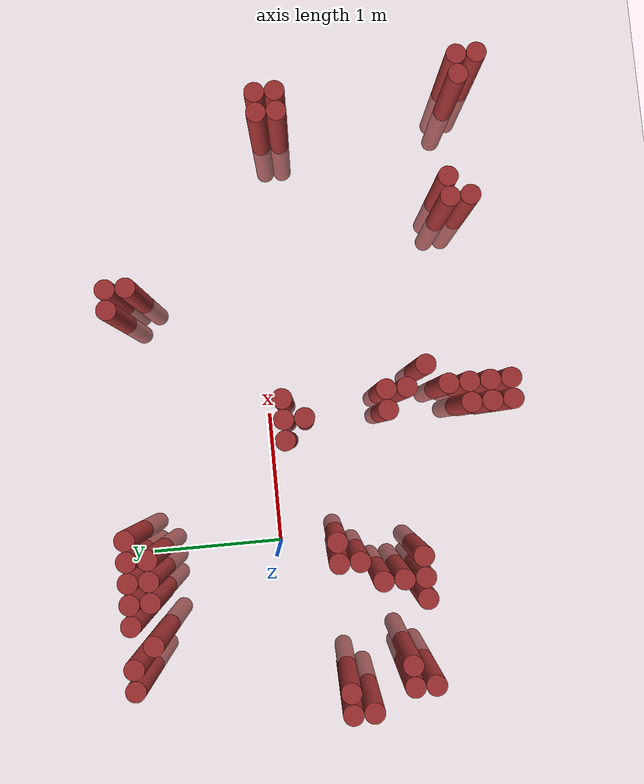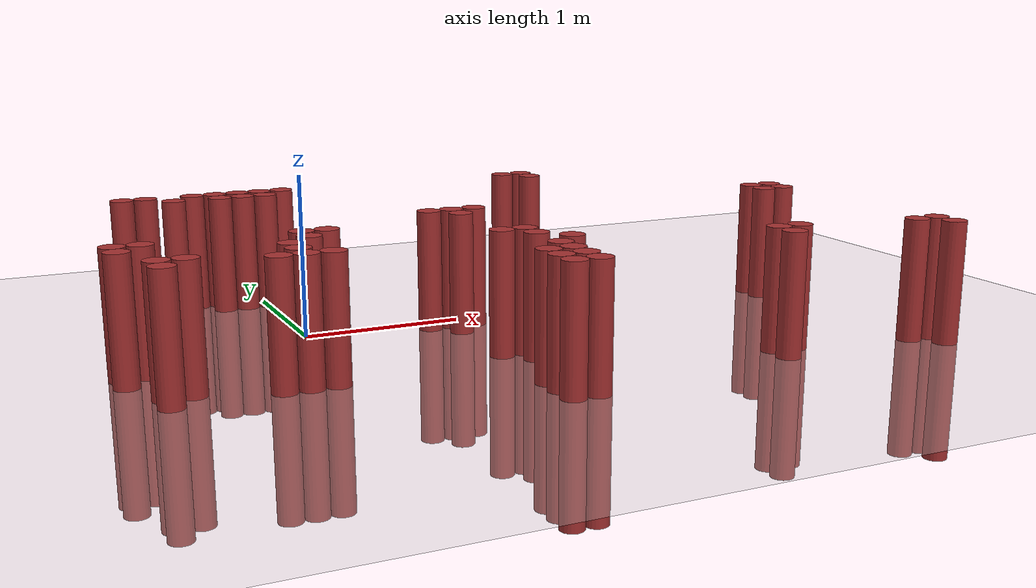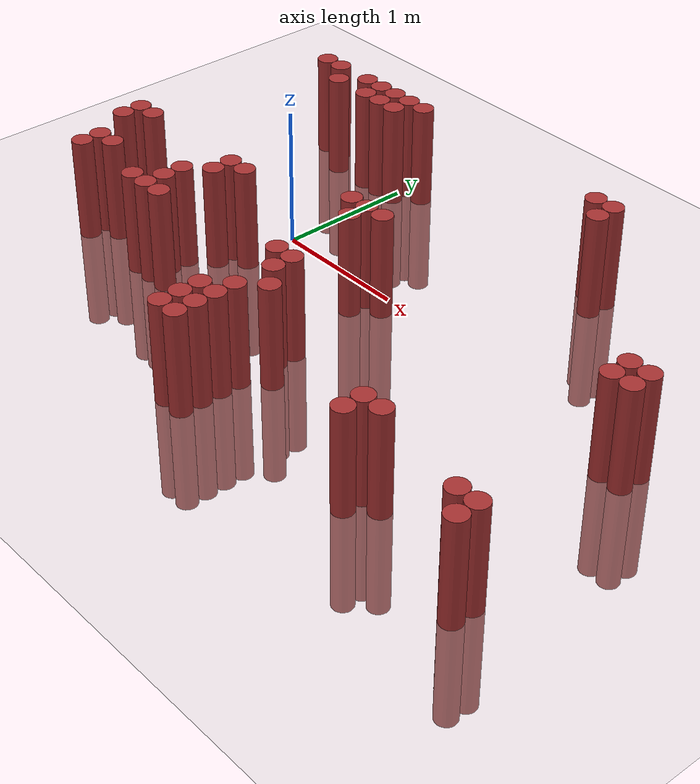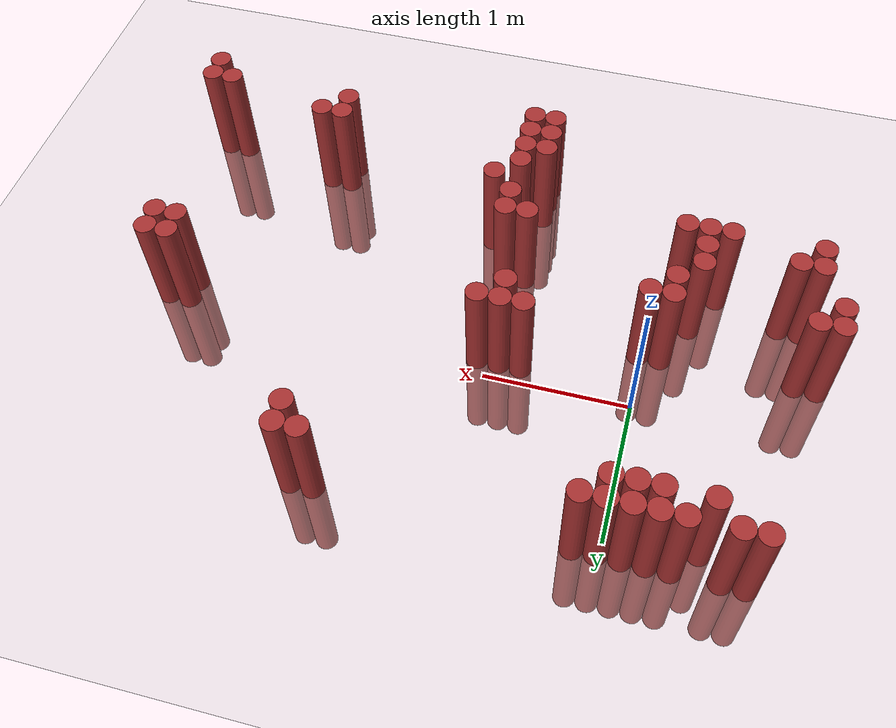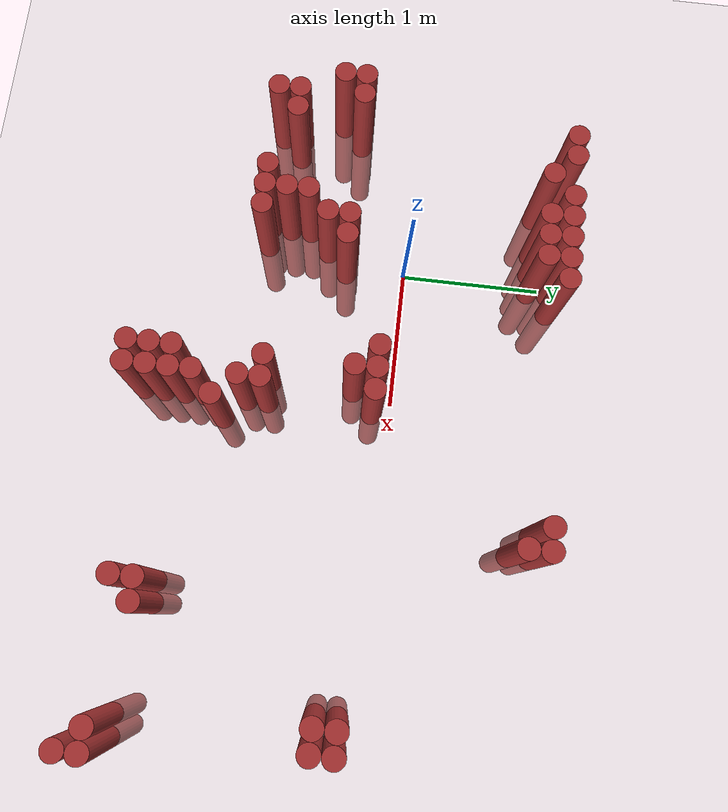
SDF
<sdf version="1.6">
 <world name="default">
  <model name="ground_plane">
   <static>1</static>
   <link name="link">
    <collision name="collision">
     <geometry><plane><normal>0 0 1</normal><size>100 100</size></plane></geometry>
     <surface><friction><ode><mu>100</mu><mu2>50</mu2></ode></friction></surface>
    </collision>
    <visual name="visual">
     <cast_shadows>0</cast_shadows>
     <geometry><plane><normal>0 0 1</normal><size>100 100</size></plane></geometry>
     <material>
      <script><uri>file://media/materials/scripts/gazebo.material</uri><name>Gazebo/Grey</name></script>
     </material>
    </visual>
   </link>
  </model>
  <model name="unit_cylinder_335">
   <static>1</static>
   <pose>-1.175000 -0.575000 0.000000 0.000000 0.000000 0.000000</pose>
   <link name="link">
    <inertial>
     <mass>1</mass>
     <inertia><ixx>0.145833</ixx><ixy>0</ixy><ixz>0</ixz><iyy>0.145833</iyy><iyz>0</iyz><izz>0.125</izz></inertia>
    </inertial>
    <collision name="collision">
     <geometry><cylinder><radius>0.075000</radius><length>1.5</length></cylinder></geometry>
    </collision>
    <visual name="visual">
     <geometry><cylinder><radius>0.075000</radius><length>1.5</length></cylinder></geometry>
     <material>
      <ambient>0.648000 0.192000 0.192000 1</ambient>
      <diffuse>0.648000 0.192000 0.192000 1</diffuse>
     </material>
     <material>
      <script><name>Gazebo/Grey</name><uri>file://media/materials/scripts/gazebo.material</uri></script>
     </material>
    </visual>
   </link>
  </model>
  <model name="unit_cylinder_336">
   <static>1</static>
   <pose>-1.175000 -0.425000 0.000000 0.000000 0.000000 0.000000</pose>
   <link name="link">
    <inertial>
     <mass>1</mass>
     <inertia><ixx>0.145833</ixx><ixy>0</ixy><ixz>0</ixz><iyy>0.145833</iyy><iyz>0</iyz><izz>0.125</izz></inertia>
    </inertial>
    <collision name="collision">
     <geometry><cylinder><radius>0.075000</radius><length>1.5</length></cylinder></geometry>
    </collision>
    <visual name="visual">
     <geometry><cylinder><radius>0.075000</radius><length>1.5</length></cylinder></geometry>
     <material>
      <ambient>0.648000 0.192000 0.192000 1</ambient>
      <diffuse>0.648000 0.192000 0.192000 1</diffuse>
     </material>
     <material>
      <script><name>Gazebo/Grey</name><uri>file://media/materials/scripts/gazebo.material</uri></script>
     </material>
    </visual>
   </link>
  </model>
  <model name="unit_cylinder_342">
   <static>1</static>
   <pose>-1.025000 -1.025000 0.000000 0.000000 0.000000 0.000000</pose>
   <link name="link">
    <inertial>
     <mass>1</mass>
     <inertia><ixx>0.145833</ixx><ixy>0</ixy><ixz>0</ixz><iyy>0.145833</iyy><iyz>0</iyz><izz>0.125</izz></inertia>
    </inertial>
    <collision name="collision">
     <geometry><cylinder><radius>0.075000</radius><length>1.5</length></cylinder></geometry>
    </collision>
    <visual name="visual">
     <geometry><cylinder><radius>0.075000</radius><length>1.5</length></cylinder></geometry>
     <material>
      <ambient>0.648000 0.192000 0.192000 1</ambient>
      <diffuse>0.648000 0.192000 0.192000 1</diffuse>
     </material>
     <material>
      <script><name>Gazebo/Grey</name><uri>file://media/materials/scripts/gazebo.material</uri></script>
     </material>
    </visual>
   </link>
  </model>
  <model name="unit_cylinder_343">
   <static>1</static>
   <pose>-1.025000 -0.875000 0.000000 0.000000 0.000000 0.000000</pose>
   <link name="link">
    <inertial>
     <mass>1</mass>
     <inertia><ixx>0.145833</ixx><ixy>0</ixy><ixz>0</ixz><iyy>0.145833</iyy><iyz>0</iyz><izz>0.125</izz></inertia>
    </inertial>
    <collision name="collision">
     <geometry><cylinder><radius>0.075000</radius><length>1.5</length></cylinder></geometry>
    </collision>
    <visual name="visual">
     <geometry><cylinder><radius>0.075000</radius><length>1.5</length></cylinder></geometry>
     <material>
      <ambient>0.648000 0.192000 0.192000 1</ambient>
      <diffuse>0.648000 0.192000 0.192000 1</diffuse>
     </material>
     <material>
      <script><name>Gazebo/Grey</name><uri>file://media/materials/scripts/gazebo.material</uri></script>
     </material>
    </visual>
   </link>
  </model>
  <model name="unit_cylinder_344">
   <static>1</static>
   <pose>-1.025000 -0.425000 0.000000 0.000000 0.000000 0.000000</pose>
   <link name="link">
    <inertial>
     <mass>1</mass>
     <inertia><ixx>0.145833</ixx><ixy>0</ixy><ixz>0</ixz><iyy>0.145833</iyy><iyz>0</iyz><izz>0.125</izz></inertia>
    </inertial>
    <collision name="collision">
     <geometry><cylinder><radius>0.075000</radius><length>1.5</length></cylinder></geometry>
    </collision>
    <visual name="visual">
     <geometry><cylinder><radius>0.075000</radius><length>1.5</length></cylinder></geometry>
     <material>
      <ambient>0.648000 0.192000 0.192000 1</ambient>
      <diffuse>0.648000 0.192000 0.192000 1</diffuse>
     </material>
     <material>
      <script><name>Gazebo/Grey</name><uri>file://media/materials/scripts/gazebo.material</uri></script>
     </material>
    </visual>
   </link>
  </model>
  <model name="unit_cylinder_348">
   <static>1</static>
   <pose>-0.875000 -0.875000 0.000000 0.000000 0.000000 0.000000</pose>
   <link name="link">
    <inertial>
     <mass>1</mass>
     <inertia><ixx>0.145833</ixx><ixy>0</ixy><ixz>0</ixz><iyy>0.145833</iyy><iyz>0</iyz><izz>0.125</izz></inertia>
    </inertial>
    <collision name="collision">
     <geometry><cylinder><radius>0.075000</radius><length>1.5</length></cylinder></geometry>
    </collision>
    <visual name="visual">
     <geometry><cylinder><radius>0.075000</radius><length>1.5</length></cylinder></geometry>
     <material>
      <ambient>0.648000 0.192000 0.192000 1</ambient>
      <diffuse>0.648000 0.192000 0.192000 1</diffuse>
     </material>
     <material>
      <script><name>Gazebo/Grey</name><uri>file://media/materials/scripts/gazebo.material</uri></script>
     </material>
    </visual>
   </link>
  </model>
  <model name="unit_cylinder_349">
   <static>1</static>
   <pose>-0.875000 1.075000 0.000000 0.000000 0.000000 0.000000</pose>
   <link name="link">
    <inertial>
     <mass>1</mass>
     <inertia><ixx>0.145833</ixx><ixy>0</ixy><ixz>0</ixz><iyy>0.145833</iyy><iyz>0</iyz><izz>0.125</izz></inertia>
    </inertial>
    <collision name="collision">
     <geometry><cylinder><radius>0.075000</radius><length>1.5</length></cylinder></geometry>
    </collision>
    <visual name="visual">
     <geometry><cylinder><radius>0.075000</radius><length>1.5</length></cylinder></geometry>
     <material>
      <ambient>0.648000 0.192000 0.192000 1</ambient>
      <diffuse>0.648000 0.192000 0.192000 1</diffuse>
     </material>
     <material>
      <script><name>Gazebo/Grey</name><uri>file://media/materials/scripts/gazebo.material</uri></script>
     </material>
    </visual>
   </link>
  </model>
  <model name="unit_cylinder_357">
   <static>1</static>
   <pose>-0.725000 1.075000 0.000000 0.000000 0.000000 0.000000</pose>
   <link name="link">
    <inertial>
     <mass>1</mass>
     <inertia><ixx>0.145833</ixx><ixy>0</ixy><ixz>0</ixz><iyy>0.145833</iyy><iyz>0</iyz><izz>0.125</izz></inertia>
    </inertial>
    <collision name="collision">
     <geometry><cylinder><radius>0.075000</radius><length>1.5</length></cylinder></geometry>
    </collision>
    <visual name="visual">
     <geometry><cylinder><radius>0.075000</radius><length>1.5</length></cylinder></geometry>
     <material>
      <ambient>0.648000 0.192000 0.192000 1</ambient>
      <diffuse>0.648000 0.192000 0.192000 1</diffuse>
     </material>
     <material>
      <script><name>Gazebo/Grey</name><uri>file://media/materials/scripts/gazebo.material</uri></script>
     </material>
    </visual>
   </link>
  </model>
  <model name="unit_cylinder_364">
   <static>1</static>
   <pose>-0.575000 0.925000 0.000000 0.000000 0.000000 0.000000</pose>
   <link name="link">
    <inertial>
     <mass>1</mass>
     <inertia><ixx>0.145833</ixx><ixy>0</ixy><ixz>0</ixz><iyy>0.145833</iyy><iyz>0</iyz><izz>0.125</izz></inertia>
    </inertial>
    <collision name="collision">
     <geometry><cylinder><radius>0.075000</radius><length>1.5</length></cylinder></geometry>
    </collision>
    <visual name="visual">
     <geometry><cylinder><radius>0.075000</radius><length>1.5</length></cylinder></geometry>
     <material>
      <ambient>0.648000 0.192000 0.192000 1</ambient>
      <diffuse>0.648000 0.192000 0.192000 1</diffuse>
     </material>
     <material>
      <script><name>Gazebo/Grey</name><uri>file://media/materials/scripts/gazebo.material</uri></script>
     </material>
    </visual>
   </link>
  </model>
  <model name="unit_cylinder_368">
   <static>1</static>
   <pose>-0.425000 -1.025000 0.000000 0.000000 0.000000 0.000000</pose>
   <link name="link">
    <inertial>
     <mass>1</mass>
     <inertia><ixx>0.145833</ixx><ixy>0</ixy><ixz>0</ixz><iyy>0.145833</iyy><iyz>0</iyz><izz>0.125</izz></inertia>
    </inertial>
    <collision name="collision">
     <geometry><cylinder><radius>0.075000</radius><length>1.5</length></cylinder></geometry>
    </collision>
    <visual name="visual">
     <geometry><cylinder><radius>0.075000</radius><length>1.5</length></cylinder></geometry>
     <material>
      <ambient>0.648000 0.192000 0.192000 1</ambient>
      <diffuse>0.648000 0.192000 0.192000 1</diffuse>
     </material>
     <material>
      <script><name>Gazebo/Grey</name><uri>file://media/materials/scripts/gazebo.material</uri></script>
     </material>
    </visual>
   </link>
  </model>
  <model name="unit_cylinder_369">
   <static>1</static>
   <pose>-0.425000 1.075000 0.000000 0.000000 0.000000 0.000000</pose>
   <link name="link">
    <inertial>
     <mass>1</mass>
     <inertia><ixx>0.145833</ixx><ixy>0</ixy><ixz>0</ixz><iyy>0.145833</iyy><iyz>0</iyz><izz>0.125</izz></inertia>
    </inertial>
    <collision name="collision">
     <geometry><cylinder><radius>0.075000</radius><length>1.5</length></cylinder></geometry>
    </collision>
    <visual name="visual">
     <geometry><cylinder><radius>0.075000</radius><length>1.5</length></cylinder></geometry>
     <material>
      <ambient>0.648000 0.192000 0.192000 1</ambient>
      <diffuse>0.648000 0.192000 0.192000 1</diffuse>
     </material>
     <material>
      <script><name>Gazebo/Grey</name><uri>file://media/materials/scripts/gazebo.material</uri></script>
     </material>
    </visual>
   </link>
  </model>
  <model name="unit_cylinder_370">
   <static>1</static>
   <pose>-0.275000 -1.025000 0.000000 0.000000 0.000000 0.000000</pose>
   <link name="link">
    <inertial>
     <mass>1</mass>
     <inertia><ixx>0.145833</ixx><ixy>0</ixy><ixz>0</ixz><iyy>0.145833</iyy><iyz>0</iyz><izz>0.125</izz></inertia>
    </inertial>
    <collision name="collision">
     <geometry><cylinder><radius>0.075000</radius><length>1.5</length></cylinder></geometry>
    </collision>
    <visual name="visual">
     <geometry><cylinder><radius>0.075000</radius><length>1.5</length></cylinder></geometry>
     <material>
      <ambient>0.648000 0.192000 0.192000 1</ambient>
      <diffuse>0.648000 0.192000 0.192000 1</diffuse>
     </material>
     <material>
      <script><name>Gazebo/Grey</name><uri>file://media/materials/scripts/gazebo.material</uri></script>
     </material>
    </visual>
   </link>
  </model>
  <model name="unit_cylinder_371">
   <static>1</static>
   <pose>-0.275000 -0.875000 0.000000 0.000000 0.000000 0.000000</pose>
   <link name="link">
    <inertial>
     <mass>1</mass>
     <inertia><ixx>0.145833</ixx><ixy>0</ixy><ixz>0</ixz><iyy>0.145833</iyy><iyz>0</iyz><izz>0.125</izz></inertia>
    </inertial>
    <collision name="collision">
     <geometry><cylinder><radius>0.075000</radius><length>1.5</length></cylinder></geometry>
    </collision>
    <visual name="visual">
     <geometry><cylinder><radius>0.075000</radius><length>1.5</length></cylinder></geometry>
     <material>
      <ambient>0.648000 0.192000 0.192000 1</ambient>
      <diffuse>0.648000 0.192000 0.192000 1</diffuse>
     </material>
     <material>
      <script><name>Gazebo/Grey</name><uri>file://media/materials/scripts/gazebo.material</uri></script>
     </material>
    </visual>
   </link>
  </model>
  <model name="unit_cylinder_372">
   <static>1</static>
   <pose>-0.275000 -0.725000 0.000000 0.000000 0.000000 0.000000</pose>
   <link name="link">
    <inertial>
     <mass>1</mass>
     <inertia><ixx>0.145833</ixx><ixy>0</ixy><ixz>0</ixz><iyy>0.145833</iyy><iyz>0</iyz><izz>0.125</izz></inertia>
    </inertial>
    <collision name="collision">
     <geometry><cylinder><radius>0.075000</radius><length>1.5</length></cylinder></geometry>
    </collision>
    <visual name="visual">
     <geometry><cylinder><radius>0.075000</radius><length>1.5</length></cylinder></geometry>
     <material>
      <ambient>0.648000 0.192000 0.192000 1</ambient>
      <diffuse>0.648000 0.192000 0.192000 1</diffuse>
     </material>
     <material>
      <script><name>Gazebo/Grey</name><uri>file://media/materials/scripts/gazebo.material</uri></script>
     </material>
    </visual>
   </link>
  </model>
  <model name="unit_cylinder_373">
   <static>1</static>
   <pose>-0.275000 0.925000 0.000000 0.000000 0.000000 0.000000</pose>
   <link name="link">
    <inertial>
     <mass>1</mass>
     <inertia><ixx>0.145833</ixx><ixy>0</ixy><ixz>0</ixz><iyy>0.145833</iyy><iyz>0</iyz><izz>0.125</izz></inertia>
    </inertial>
    <collision name="collision">
     <geometry><cylinder><radius>0.075000</radius><length>1.5</length></cylinder></geometry>
    </collision>
    <visual name="visual">
     <geometry><cylinder><radius>0.075000</radius><length>1.5</length></cylinder></geometry>
     <material>
      <ambient>0.648000 0.192000 0.192000 1</ambient>
      <diffuse>0.648000 0.192000 0.192000 1</diffuse>
     </material>
     <material>
      <script><name>Gazebo/Grey</name><uri>file://media/materials/scripts/gazebo.material</uri></script>
     </material>
    </visual>
   </link>
  </model>
  <model name="unit_cylinder_374">
   <static>1</static>
   <pose>-0.275000 1.075000 0.000000 0.000000 0.000000 0.000000</pose>
   <link name="link">
    <inertial>
     <mass>1</mass>
     <inertia><ixx>0.145833</ixx><ixy>0</ixy><ixz>0</ixz><iyy>0.145833</iyy><iyz>0</iyz><izz>0.125</izz></inertia>
    </inertial>
    <collision name="collision">
     <geometry><cylinder><radius>0.075000</radius><length>1.5</length></cylinder></geometry>
    </collision>
    <visual name="visual">
     <geometry><cylinder><radius>0.075000</radius><length>1.5</length></cylinder></geometry>
     <material>
      <ambient>0.648000 0.192000 0.192000 1</ambient>
      <diffuse>0.648000 0.192000 0.192000 1</diffuse>
     </material>
     <material>
      <script><name>Gazebo/Grey</name><uri>file://media/materials/scripts/gazebo.material</uri></script>
     </material>
    </visual>
   </link>
  </model>
  <model name="unit_cylinder_376">
   <static>1</static>
   <pose>-0.125000 -1.025000 0.000000 0.000000 0.000000 0.000000</pose>
   <link name="link">
    <inertial>
     <mass>1</mass>
     <inertia><ixx>0.145833</ixx><ixy>0</ixy><ixz>0</ixz><iyy>0.145833</iyy><iyz>0</iyz><izz>0.125</izz></inertia>
    </inertial>
    <collision name="collision">
     <geometry><cylinder><radius>0.075000</radius><length>1.5</length></cylinder></geometry>
    </collision>
    <visual name="visual">
     <geometry><cylinder><radius>0.075000</radius><length>1.5</length></cylinder></geometry>
     <material>
      <ambient>0.648000 0.192000 0.192000 1</ambient>
      <diffuse>0.648000 0.192000 0.192000 1</diffuse>
     </material>
     <material>
      <script><name>Gazebo/Grey</name><uri>file://media/materials/scripts/gazebo.material</uri></script>
     </material>
    </visual>
   </link>
  </model>
  <model name="unit_cylinder_377">
   <static>1</static>
   <pose>-0.125000 -0.575000 0.000000 0.000000 0.000000 0.000000</pose>
   <link name="link">
    <inertial>
     <mass>1</mass>
     <inertia><ixx>0.145833</ixx><ixy>0</ixy><ixz>0</ixz><iyy>0.145833</iyy><iyz>0</iyz><izz>0.125</izz></inertia>
    </inertial>
    <collision name="collision">
     <geometry><cylinder><radius>0.075000</radius><length>1.5</length></cylinder></geometry>
    </collision>
    <visual name="visual">
     <geometry><cylinder><radius>0.075000</radius><length>1.5</length></cylinder></geometry>
     <material>
      <ambient>0.648000 0.192000 0.192000 1</ambient>
      <diffuse>0.648000 0.192000 0.192000 1</diffuse>
     </material>
     <material>
      <script><name>Gazebo/Grey</name><uri>file://media/materials/scripts/gazebo.material</uri></script>
     </material>
    </visual>
   </link>
  </model>
  <model name="unit_cylinder_378">
   <static>1</static>
   <pose>-0.125000 -0.425000 0.000000 0.000000 0.000000 0.000000</pose>
   <link name="link">
    <inertial>
     <mass>1</mass>
     <inertia><ixx>0.145833</ixx><ixy>0</ixy><ixz>0</ixz><iyy>0.145833</iyy><iyz>0</iyz><izz>0.125</izz></inertia>
    </inertial>
    <collision name="collision">
     <geometry><cylinder><radius>0.075000</radius><length>1.5</length></cylinder></geometry>
    </collision>
    <visual name="visual">
     <geometry><cylinder><radius>0.075000</radius><length>1.5</length></cylinder></geometry>
     <material>
      <ambient>0.648000 0.192000 0.192000 1</ambient>
      <diffuse>0.648000 0.192000 0.192000 1</diffuse>
     </material>
     <material>
      <script><name>Gazebo/Grey</name><uri>file://media/materials/scripts/gazebo.material</uri></script>
     </material>
    </visual>
   </link>
  </model>
  <model name="unit_cylinder_379">
   <static>1</static>
   <pose>-0.125000 0.925000 0.000000 0.000000 0.000000 0.000000</pose>
   <link name="link">
    <inertial>
     <mass>1</mass>
     <inertia><ixx>0.145833</ixx><ixy>0</ixy><ixz>0</ixz><iyy>0.145833</iyy><iyz>0</iyz><izz>0.125</izz></inertia>
    </inertial>
    <collision name="collision">
     <geometry><cylinder><radius>0.075000</radius><length>1.5</length></cylinder></geometry>
    </collision>
    <visual name="visual">
     <geometry><cylinder><radius>0.075000</radius><length>1.5</length></cylinder></geometry>
     <material>
      <ambient>0.648000 0.192000 0.192000 1</ambient>
      <diffuse>0.648000 0.192000 0.192000 1</diffuse>
     </material>
     <material>
      <script><name>Gazebo/Grey</name><uri>file://media/materials/scripts/gazebo.material</uri></script>
     </material>
    </visual>
   </link>
  </model>
  <model name="unit_cylinder_380">
   <static>1</static>
   <pose>-0.125000 1.075000 0.000000 0.000000 0.000000 0.000000</pose>
   <link name="link">
    <inertial>
     <mass>1</mass>
     <inertia><ixx>0.145833</ixx><ixy>0</ixy><ixz>0</ixz><iyy>0.145833</iyy><iyz>0</iyz><izz>0.125</izz></inertia>
    </inertial>
    <collision name="collision">
     <geometry><cylinder><radius>0.075000</radius><length>1.5</length></cylinder></geometry>
    </collision>
    <visual name="visual">
     <geometry><cylinder><radius>0.075000</radius><length>1.5</length></cylinder></geometry>
     <material>
      <ambient>0.648000 0.192000 0.192000 1</ambient>
      <diffuse>0.648000 0.192000 0.192000 1</diffuse>
     </material>
     <material>
      <script><name>Gazebo/Grey</name><uri>file://media/materials/scripts/gazebo.material</uri></script>
     </material>
    </visual>
   </link>
  </model>
  <model name="unit_cylinder_386">
   <static>1</static>
   <pose>0.025000 -0.425000 0.000000 0.000000 0.000000 0.000000</pose>
   <link name="link">
    <inertial>
     <mass>1</mass>
     <inertia><ixx>0.145833</ixx><ixy>0</ixy><ixz>0</ixz><iyy>0.145833</iyy><iyz>0</iyz><izz>0.125</izz></inertia>
    </inertial>
    <collision name="collision">
     <geometry><cylinder><radius>0.075000</radius><length>1.5</length></cylinder></geometry>
    </collision>
    <visual name="visual">
     <geometry><cylinder><radius>0.075000</radius><length>1.5</length></cylinder></geometry>
     <material>
      <ambient>0.648000 0.192000 0.192000 1</ambient>
      <diffuse>0.648000 0.192000 0.192000 1</diffuse>
     </material>
     <material>
      <script><name>Gazebo/Grey</name><uri>file://media/materials/scripts/gazebo.material</uri></script>
     </material>
    </visual>
   </link>
  </model>
  <model name="unit_cylinder_387">
   <static>1</static>
   <pose>0.025000 0.925000 0.000000 0.000000 0.000000 0.000000</pose>
   <link name="link">
    <inertial>
     <mass>1</mass>
     <inertia><ixx>0.145833</ixx><ixy>0</ixy><ixz>0</ixz><iyy>0.145833</iyy><iyz>0</iyz><izz>0.125</izz></inertia>
    </inertial>
    <collision name="collision">
     <geometry><cylinder><radius>0.075000</radius><length>1.5</length></cylinder></geometry>
    </collision>
    <visual name="visual">
     <geometry><cylinder><radius>0.075000</radius><length>1.5</length></cylinder></geometry>
     <material>
      <ambient>0.648000 0.192000 0.192000 1</ambient>
      <diffuse>0.648000 0.192000 0.192000 1</diffuse>
     </material>
     <material>
      <script><name>Gazebo/Grey</name><uri>file://media/materials/scripts/gazebo.material</uri></script>
     </material>
    </visual>
   </link>
  </model>
  <model name="unit_cylinder_388">
   <static>1</static>
   <pose>0.025000 1.075000 0.000000 0.000000 0.000000 0.000000</pose>
   <link name="link">
    <inertial>
     <mass>1</mass>
     <inertia><ixx>0.145833</ixx><ixy>0</ixy><ixz>0</ixz><iyy>0.145833</iyy><iyz>0</iyz><izz>0.125</izz></inertia>
    </inertial>
    <collision name="collision">
     <geometry><cylinder><radius>0.075000</radius><length>1.5</length></cylinder></geometry>
    </collision>
    <visual name="visual">
     <geometry><cylinder><radius>0.075000</radius><length>1.5</length></cylinder></geometry>
     <material>
      <ambient>0.648000 0.192000 0.192000 1</ambient>
      <diffuse>0.648000 0.192000 0.192000 1</diffuse>
     </material>
     <material>
      <script><name>Gazebo/Grey</name><uri>file://media/materials/scripts/gazebo.material</uri></script>
     </material>
    </visual>
   </link>
  </model>
  <model name="unit_cylinder_392">
   <static>1</static>
   <pose>0.175000 1.075000 0.000000 0.000000 0.000000 0.000000</pose>
   <link name="link">
    <inertial>
     <mass>1</mass>
     <inertia><ixx>0.145833</ixx><ixy>0</ixy><ixz>0</ixz><iyy>0.145833</iyy><iyz>0</iyz><izz>0.125</izz></inertia>
    </inertial>
    <collision name="collision">
     <geometry><cylinder><radius>0.075000</radius><length>1.5</length></cylinder></geometry>
    </collision>
    <visual name="visual">
     <geometry><cylinder><radius>0.075000</radius><length>1.5</length></cylinder></geometry>
     <material>
      <ambient>0.648000 0.192000 0.192000 1</ambient>
      <diffuse>0.648000 0.192000 0.192000 1</diffuse>
     </material>
     <material>
      <script><name>Gazebo/Grey</name><uri>file://media/materials/scripts/gazebo.material</uri></script>
     </material>
    </visual>
   </link>
  </model>
  <model name="unit_cylinder_404">
   <static>1</static>
   <pose>0.775000 -0.125000 0.000000 0.000000 0.000000 0.000000</pose>
   <link name="link">
    <inertial>
     <mass>1</mass>
     <inertia><ixx>0.145833</ixx><ixy>0</ixy><ixz>0</ixz><iyy>0.145833</iyy><iyz>0</iyz><izz>0.125</izz></inertia>
    </inertial>
    <collision name="collision">
     <geometry><cylinder><radius>0.075000</radius><length>1.5</length></cylinder></geometry>
    </collision>
    <visual name="visual">
     <geometry><cylinder><radius>0.075000</radius><length>1.5</length></cylinder></geometry>
     <material>
      <ambient>0.648000 0.192000 0.192000 1</ambient>
      <diffuse>0.648000 0.192000 0.192000 1</diffuse>
     </material>
     <material>
      <script><name>Gazebo/Grey</name><uri>file://media/materials/scripts/gazebo.material</uri></script>
     </material>
    </visual>
   </link>
  </model>
  <model name="unit_cylinder_409">
   <static>1</static>
   <pose>0.925000 -1.775000 0.000000 0.000000 0.000000 0.000000</pose>
   <link name="link">
    <inertial>
     <mass>1</mass>
     <inertia><ixx>0.145833</ixx><ixy>0</ixy><ixz>0</ixz><iyy>0.145833</iyy><iyz>0</iyz><izz>0.125</izz></inertia>
    </inertial>
    <collision name="collision">
     <geometry><cylinder><radius>0.075000</radius><length>1.5</length></cylinder></geometry>
    </collision>
    <visual name="visual">
     <geometry><cylinder><radius>0.075000</radius><length>1.5</length></cylinder></geometry>
     <material>
      <ambient>0.648000 0.192000 0.192000 1</ambient>
      <diffuse>0.648000 0.192000 0.192000 1</diffuse>
     </material>
     <material>
      <script><name>Gazebo/Grey</name><uri>file://media/materials/scripts/gazebo.material</uri></script>
     </material>
    </visual>
   </link>
  </model>
  <model name="unit_cylinder_410">
   <static>1</static>
   <pose>0.925000 -1.625000 0.000000 0.000000 0.000000 0.000000</pose>
   <link name="link">
    <inertial>
     <mass>1</mass>
     <inertia><ixx>0.145833</ixx><ixy>0</ixy><ixz>0</ixz><iyy>0.145833</iyy><iyz>0</iyz><izz>0.125</izz></inertia>
    </inertial>
    <collision name="collision">
     <geometry><cylinder><radius>0.075000</radius><length>1.5</length></cylinder></geometry>
    </collision>
    <visual name="visual">
     <geometry><cylinder><radius>0.075000</radius><length>1.5</length></cylinder></geometry>
     <material>
      <ambient>0.648000 0.192000 0.192000 1</ambient>
      <diffuse>0.648000 0.192000 0.192000 1</diffuse>
     </material>
     <material>
      <script><name>Gazebo/Grey</name><uri>file://media/materials/scripts/gazebo.material</uri></script>
     </material>
    </visual>
   </link>
  </model>
  <model name="unit_cylinder_411">
   <static>1</static>
   <pose>0.925000 -1.475000 0.000000 0.000000 0.000000 0.000000</pose>
   <link name="link">
    <inertial>
     <mass>1</mass>
     <inertia><ixx>0.145833</ixx><ixy>0</ixy><ixz>0</ixz><iyy>0.145833</iyy><iyz>0</iyz><izz>0.125</izz></inertia>
    </inertial>
    <collision name="collision">
     <geometry><cylinder><radius>0.075000</radius><length>1.5</length></cylinder></geometry>
    </collision>
    <visual name="visual">
     <geometry><cylinder><radius>0.075000</radius><length>1.5</length></cylinder></geometry>
     <material>
      <ambient>0.648000 0.192000 0.192000 1</ambient>
      <diffuse>0.648000 0.192000 0.192000 1</diffuse>
     </material>
     <material>
      <script><name>Gazebo/Grey</name><uri>file://media/materials/scripts/gazebo.material</uri></script>
     </material>
    </visual>
   </link>
  </model>
  <model name="unit_cylinder_412">
   <static>1</static>
   <pose>0.925000 -0.875000 0.000000 0.000000 0.000000 0.000000</pose>
   <link name="link">
    <inertial>
     <mass>1</mass>
     <inertia><ixx>0.145833</ixx><ixy>0</ixy><ixz>0</ixz><iyy>0.145833</iyy><iyz>0</iyz><izz>0.125</izz></inertia>
    </inertial>
    <collision name="collision">
     <geometry><cylinder><radius>0.075000</radius><length>1.5</length></cylinder></geometry>
    </collision>
    <visual name="visual">
     <geometry><cylinder><radius>0.075000</radius><length>1.5</length></cylinder></geometry>
     <material>
      <ambient>0.648000 0.192000 0.192000 1</ambient>
      <diffuse>0.648000 0.192000 0.192000 1</diffuse>
     </material>
     <material>
      <script><name>Gazebo/Grey</name><uri>file://media/materials/scripts/gazebo.material</uri></script>
     </material>
    </visual>
   </link>
  </model>
  <model name="unit_cylinder_413">
   <static>1</static>
   <pose>0.925000 -0.275000 0.000000 0.000000 0.000000 0.000000</pose>
   <link name="link">
    <inertial>
     <mass>1</mass>
     <inertia><ixx>0.145833</ixx><ixy>0</ixy><ixz>0</ixz><iyy>0.145833</iyy><iyz>0</iyz><izz>0.125</izz></inertia>
    </inertial>
    <collision name="collision">
     <geometry><cylinder><radius>0.075000</radius><length>1.5</length></cylinder></geometry>
    </collision>
    <visual name="visual">
     <geometry><cylinder><radius>0.075000</radius><length>1.5</length></cylinder></geometry>
     <material>
      <ambient>0.648000 0.192000 0.192000 1</ambient>
      <diffuse>0.648000 0.192000 0.192000 1</diffuse>
     </material>
     <material>
      <script><name>Gazebo/Grey</name><uri>file://media/materials/scripts/gazebo.material</uri></script>
     </material>
    </visual>
   </link>
  </model>
  <model name="unit_cylinder_414">
   <static>1</static>
   <pose>0.925000 -0.125000 0.000000 0.000000 0.000000 0.000000</pose>
   <link name="link">
    <inertial>
     <mass>1</mass>
     <inertia><ixx>0.145833</ixx><ixy>0</ixy><ixz>0</ixz><iyy>0.145833</iyy><iyz>0</iyz><izz>0.125</izz></inertia>
    </inertial>
    <collision name="collision">
     <geometry><cylinder><radius>0.075000</radius><length>1.5</length></cylinder></geometry>
    </collision>
    <visual name="visual">
     <geometry><cylinder><radius>0.075000</radius><length>1.5</length></cylinder></geometry>
     <material>
      <ambient>0.648000 0.192000 0.192000 1</ambient>
      <diffuse>0.648000 0.192000 0.192000 1</diffuse>
     </material>
     <material>
      <script><name>Gazebo/Grey</name><uri>file://media/materials/scripts/gazebo.material</uri></script>
     </material>
    </visual>
   </link>
  </model>
  <model name="unit_cylinder_415">
   <static>1</static>
   <pose>1.075000 -1.775000 0.000000 0.000000 0.000000 0.000000</pose>
   <link name="link">
    <inertial>
     <mass>1</mass>
     <inertia><ixx>0.145833</ixx><ixy>0</ixy><ixz>0</ixz><iyy>0.145833</iyy><iyz>0</iyz><izz>0.125</izz></inertia>
    </inertial>
    <collision name="collision">
     <geometry><cylinder><radius>0.075000</radius><length>1.5</length></cylinder></geometry>
    </collision>
    <visual name="visual">
     <geometry><cylinder><radius>0.075000</radius><length>1.5</length></cylinder></geometry>
     <material>
      <ambient>0.648000 0.192000 0.192000 1</ambient>
      <diffuse>0.648000 0.192000 0.192000 1</diffuse>
     </material>
     <material>
      <script><name>Gazebo/Grey</name><uri>file://media/materials/scripts/gazebo.material</uri></script>
     </material>
    </visual>
   </link>
  </model>
  <model name="unit_cylinder_416">
   <static>1</static>
   <pose>1.075000 -1.625000 0.000000 0.000000 0.000000 0.000000</pose>
   <link name="link">
    <inertial>
     <mass>1</mass>
     <inertia><ixx>0.145833</ixx><ixy>0</ixy><ixz>0</ixz><iyy>0.145833</iyy><iyz>0</iyz><izz>0.125</izz></inertia>
    </inertial>
    <collision name="collision">
     <geometry><cylinder><radius>0.075000</radius><length>1.5</length></cylinder></geometry>
    </collision>
    <visual name="visual">
     <geometry><cylinder><radius>0.075000</radius><length>1.5</length></cylinder></geometry>
     <material>
      <ambient>0.648000 0.192000 0.192000 1</ambient>
      <diffuse>0.648000 0.192000 0.192000 1</diffuse>
     </material>
     <material>
      <script><name>Gazebo/Grey</name><uri>file://media/materials/scripts/gazebo.material</uri></script>
     </material>
    </visual>
   </link>
  </model>
  <model name="unit_cylinder_417">
   <static>1</static>
   <pose>1.075000 -1.475000 0.000000 0.000000 0.000000 0.000000</pose>
   <link name="link">
    <inertial>
     <mass>1</mass>
     <inertia><ixx>0.145833</ixx><ixy>0</ixy><ixz>0</ixz><iyy>0.145833</iyy><iyz>0</iyz><izz>0.125</izz></inertia>
    </inertial>
    <collision name="collision">
     <geometry><cylinder><radius>0.075000</radius><length>1.5</length></cylinder></geometry>
    </collision>
    <visual name="visual">
     <geometry><cylinder><radius>0.075000</radius><length>1.5</length></cylinder></geometry>
     <material>
      <ambient>0.648000 0.192000 0.192000 1</ambient>
      <diffuse>0.648000 0.192000 0.192000 1</diffuse>
     </material>
     <material>
      <script><name>Gazebo/Grey</name><uri>file://media/materials/scripts/gazebo.material</uri></script>
     </material>
    </visual>
   </link>
  </model>
  <model name="unit_cylinder_418">
   <static>1</static>
   <pose>1.075000 -1.325000 0.000000 0.000000 0.000000 0.000000</pose>
   <link name="link">
    <inertial>
     <mass>1</mass>
     <inertia><ixx>0.145833</ixx><ixy>0</ixy><ixz>0</ixz><iyy>0.145833</iyy><iyz>0</iyz><izz>0.125</izz></inertia>
    </inertial>
    <collision name="collision">
     <geometry><cylinder><radius>0.075000</radius><length>1.5</length></cylinder></geometry>
    </collision>
    <visual name="visual">
     <geometry><cylinder><radius>0.075000</radius><length>1.5</length></cylinder></geometry>
     <material>
      <ambient>0.648000 0.192000 0.192000 1</ambient>
      <diffuse>0.648000 0.192000 0.192000 1</diffuse>
     </material>
     <material>
      <script><name>Gazebo/Grey</name><uri>file://media/materials/scripts/gazebo.material</uri></script>
     </material>
    </visual>
   </link>
  </model>
  <model name="unit_cylinder_419">
   <static>1</static>
   <pose>1.075000 -1.025000 0.000000 0.000000 0.000000 0.000000</pose>
   <link name="link">
    <inertial>
     <mass>1</mass>
     <inertia><ixx>0.145833</ixx><ixy>0</ixy><ixz>0</ixz><iyy>0.145833</iyy><iyz>0</iyz><izz>0.125</izz></inertia>
    </inertial>
    <collision name="collision">
     <geometry><cylinder><radius>0.075000</radius><length>1.5</length></cylinder></geometry>
    </collision>
    <visual name="visual">
     <geometry><cylinder><radius>0.075000</radius><length>1.5</length></cylinder></geometry>
     <material>
      <ambient>0.648000 0.192000 0.192000 1</ambient>
      <diffuse>0.648000 0.192000 0.192000 1</diffuse>
     </material>
     <material>
      <script><name>Gazebo/Grey</name><uri>file://media/materials/scripts/gazebo.material</uri></script>
     </material>
    </visual>
   </link>
  </model>
  <model name="unit_cylinder_420">
   <static>1</static>
   <pose>1.075000 -0.875000 0.000000 0.000000 0.000000 0.000000</pose>
   <link name="link">
    <inertial>
     <mass>1</mass>
     <inertia><ixx>0.145833</ixx><ixy>0</ixy><ixz>0</ixz><iyy>0.145833</iyy><iyz>0</iyz><izz>0.125</izz></inertia>
    </inertial>
    <collision name="collision">
     <geometry><cylinder><radius>0.075000</radius><length>1.5</length></cylinder></geometry>
    </collision>
    <visual name="visual">
     <geometry><cylinder><radius>0.075000</radius><length>1.5</length></cylinder></geometry>
     <material>
      <ambient>0.648000 0.192000 0.192000 1</ambient>
      <diffuse>0.648000 0.192000 0.192000 1</diffuse>
     </material>
     <material>
      <script><name>Gazebo/Grey</name><uri>file://media/materials/scripts/gazebo.material</uri></script>
     </material>
    </visual>
   </link>
  </model>
  <model name="unit_cylinder_421">
   <static>1</static>
   <pose>1.075000 -0.125000 0.000000 0.000000 0.000000 0.000000</pose>
   <link name="link">
    <inertial>
     <mass>1</mass>
     <inertia><ixx>0.145833</ixx><ixy>0</ixy><ixz>0</ixz><iyy>0.145833</iyy><iyz>0</iyz><izz>0.125</izz></inertia>
    </inertial>
    <collision name="collision">
     <geometry><cylinder><radius>0.075000</radius><length>1.5</length></cylinder></geometry>
    </collision>
    <visual name="visual">
     <geometry><cylinder><radius>0.075000</radius><length>1.5</length></cylinder></geometry>
     <material>
      <ambient>0.648000 0.192000 0.192000 1</ambient>
      <diffuse>0.648000 0.192000 0.192000 1</diffuse>
     </material>
     <material>
      <script><name>Gazebo/Grey</name><uri>file://media/materials/scripts/gazebo.material</uri></script>
     </material>
    </visual>
   </link>
  </model>
  <model name="unit_cylinder_423">
   <static>1</static>
   <pose>1.225000 -1.175000 0.000000 0.000000 0.000000 0.000000</pose>
   <link name="link">
    <inertial>
     <mass>1</mass>
     <inertia><ixx>0.145833</ixx><ixy>0</ixy><ixz>0</ixz><iyy>0.145833</iyy><iyz>0</iyz><izz>0.125</izz></inertia>
    </inertial>
    <collision name="collision">
     <geometry><cylinder><radius>0.075000</radius><length>1.5</length></cylinder></geometry>
    </collision>
    <visual name="visual">
     <geometry><cylinder><radius>0.075000</radius><length>1.5</length></cylinder></geometry>
     <material>
      <ambient>0.648000 0.192000 0.192000 1</ambient>
      <diffuse>0.648000 0.192000 0.192000 1</diffuse>
     </material>
     <material>
      <script><name>Gazebo/Grey</name><uri>file://media/materials/scripts/gazebo.material</uri></script>
     </material>
    </visual>
   </link>
  </model>
  <model name="unit_cylinder_434">
   <static>1</static>
   <pose>1.825000 1.075000 0.000000 0.000000 0.000000 0.000000</pose>
   <link name="link">
    <inertial>
     <mass>1</mass>
     <inertia><ixx>0.145833</ixx><ixy>0</ixy><ixz>0</ixz><iyy>0.145833</iyy><iyz>0</iyz><izz>0.125</izz></inertia>
    </inertial>
    <collision name="collision">
     <geometry><cylinder><radius>0.075000</radius><length>1.5</length></cylinder></geometry>
    </collision>
    <visual name="visual">
     <geometry><cylinder><radius>0.075000</radius><length>1.5</length></cylinder></geometry>
     <material>
      <ambient>0.648000 0.192000 0.192000 1</ambient>
      <diffuse>0.648000 0.192000 0.192000 1</diffuse>
     </material>
     <material>
      <script><name>Gazebo/Grey</name><uri>file://media/materials/scripts/gazebo.material</uri></script>
     </material>
    </visual>
   </link>
  </model>
  <model name="unit_cylinder_437">
   <static>1</static>
   <pose>1.975000 0.925000 0.000000 0.000000 0.000000 0.000000</pose>
   <link name="link">
    <inertial>
     <mass>1</mass>
     <inertia><ixx>0.145833</ixx><ixy>0</ixy><ixz>0</ixz><iyy>0.145833</iyy><iyz>0</iyz><izz>0.125</izz></inertia>
    </inertial>
    <collision name="collision">
     <geometry><cylinder><radius>0.075000</radius><length>1.5</length></cylinder></geometry>
    </collision>
    <visual name="visual">
     <geometry><cylinder><radius>0.075000</radius><length>1.5</length></cylinder></geometry>
     <material>
      <ambient>0.648000 0.192000 0.192000 1</ambient>
      <diffuse>0.648000 0.192000 0.192000 1</diffuse>
     </material>
     <material>
      <script><name>Gazebo/Grey</name><uri>file://media/materials/scripts/gazebo.material</uri></script>
     </material>
    </visual>
   </link>
  </model>
  <model name="unit_cylinder_438">
   <static>1</static>
   <pose>1.975000 1.075000 0.000000 0.000000 0.000000 0.000000</pose>
   <link name="link">
    <inertial>
     <mass>1</mass>
     <inertia><ixx>0.145833</ixx><ixy>0</ixy><ixz>0</ixz><iyy>0.145833</iyy><iyz>0</iyz><izz>0.125</izz></inertia>
    </inertial>
    <collision name="collision">
     <geometry><cylinder><radius>0.075000</radius><length>1.5</length></cylinder></geometry>
    </collision>
    <visual name="visual">
     <geometry><cylinder><radius>0.075000</radius><length>1.5</length></cylinder></geometry>
     <material>
      <ambient>0.648000 0.192000 0.192000 1</ambient>
      <diffuse>0.648000 0.192000 0.192000 1</diffuse>
     </material>
     <material>
      <script><name>Gazebo/Grey</name><uri>file://media/materials/scripts/gazebo.material</uri></script>
     </material>
    </visual>
   </link>
  </model>
  <model name="unit_cylinder_442">
   <static>1</static>
   <pose>2.425000 -1.625000 0.000000 0.000000 0.000000 0.000000</pose>
   <link name="link">
    <inertial>
     <mass>1</mass>
     <inertia><ixx>0.145833</ixx><ixy>0</ixy><ixz>0</ixz><iyy>0.145833</iyy><iyz>0</iyz><izz>0.125</izz></inertia>
    </inertial>
    <collision name="collision">
     <geometry><cylinder><radius>0.075000</radius><length>1.5</length></cylinder></geometry>
    </collision>
    <visual name="visual">
     <geometry><cylinder><radius>0.075000</radius><length>1.5</length></cylinder></geometry>
     <material>
      <ambient>0.648000 0.192000 0.192000 1</ambient>
      <diffuse>0.648000 0.192000 0.192000 1</diffuse>
     </material>
     <material>
      <script><name>Gazebo/Grey</name><uri>file://media/materials/scripts/gazebo.material</uri></script>
     </material>
    </visual>
   </link>
  </model>
  <model name="unit_cylinder_443">
   <static>1</static>
   <pose>2.425000 -1.475000 0.000000 0.000000 0.000000 0.000000</pose>
   <link name="link">
    <inertial>
     <mass>1</mass>
     <inertia><ixx>0.145833</ixx><ixy>0</ixy><ixz>0</ixz><iyy>0.145833</iyy><iyz>0</iyz><izz>0.125</izz></inertia>
    </inertial>
    <collision name="collision">
     <geometry><cylinder><radius>0.075000</radius><length>1.5</length></cylinder></geometry>
    </collision>
    <visual name="visual">
     <geometry><cylinder><radius>0.075000</radius><length>1.5</length></cylinder></geometry>
     <material>
      <ambient>0.648000 0.192000 0.192000 1</ambient>
      <diffuse>0.648000 0.192000 0.192000 1</diffuse>
     </material>
     <material>
      <script><name>Gazebo/Grey</name><uri>file://media/materials/scripts/gazebo.material</uri></script>
     </material>
    </visual>
   </link>
  </model>
  <model name="unit_cylinder_444">
   <static>1</static>
   <pose>2.575000 -1.475000 0.000000 0.000000 0.000000 0.000000</pose>
   <link name="link">
    <inertial>
     <mass>1</mass>
     <inertia><ixx>0.145833</ixx><ixy>0</ixy><ixz>0</ixz><iyy>0.145833</iyy><iyz>0</iyz><izz>0.125</izz></inertia>
    </inertial>
    <collision name="collision">
     <geometry><cylinder><radius>0.075000</radius><length>1.5</length></cylinder></geometry>
    </collision>
    <visual name="visual">
     <geometry><cylinder><radius>0.075000</radius><length>1.5</length></cylinder></geometry>
     <material>
      <ambient>0.648000 0.192000 0.192000 1</ambient>
      <diffuse>0.648000 0.192000 0.192000 1</diffuse>
     </material>
     <material>
      <script><name>Gazebo/Grey</name><uri>file://media/materials/scripts/gazebo.material</uri></script>
     </material>
    </visual>
   </link>
  </model>
  <model name="unit_cylinder_447">
   <static>1</static>
   <pose>3.175000 -0.275000 0.000000 0.000000 0.000000 0.000000</pose>
   <link name="link">
    <inertial>
     <mass>1</mass>
     <inertia><ixx>0.145833</ixx><ixy>0</ixy><ixz>0</ixz><iyy>0.145833</iyy><iyz>0</iyz><izz>0.125</izz></inertia>
    </inertial>
    <collision name="collision">
     <geometry><cylinder><radius>0.075000</radius><length>1.5</length></cylinder></geometry>
    </collision>
    <visual name="visual">
     <geometry><cylinder><radius>0.075000</radius><length>1.5</length></cylinder></geometry>
     <material>
      <ambient>0.648000 0.192000 0.192000 1</ambient>
      <diffuse>0.648000 0.192000 0.192000 1</diffuse>
     </material>
     <material>
      <script><name>Gazebo/Grey</name><uri>file://media/materials/scripts/gazebo.material</uri></script>
     </material>
    </visual>
   </link>
  </model>
  <model name="unit_cylinder_448">
   <static>1</static>
   <pose>3.175000 -0.125000 0.000000 0.000000 0.000000 0.000000</pose>
   <link name="link">
    <inertial>
     <mass>1</mass>
     <inertia><ixx>0.145833</ixx><ixy>0</ixy><ixz>0</ixz><iyy>0.145833</iyy><iyz>0</iyz><izz>0.125</izz></inertia>
    </inertial>
    <collision name="collision">
     <geometry><cylinder><radius>0.075000</radius><length>1.5</length></cylinder></geometry>
    </collision>
    <visual name="visual">
     <geometry><cylinder><radius>0.075000</radius><length>1.5</length></cylinder></geometry>
     <material>
      <ambient>0.648000 0.192000 0.192000 1</ambient>
      <diffuse>0.648000 0.192000 0.192000 1</diffuse>
     </material>
     <material>
      <script><name>Gazebo/Grey</name><uri>file://media/materials/scripts/gazebo.material</uri></script>
     </material>
    </visual>
   </link>
  </model>
  <model name="unit_cylinder_452">
   <static>1</static>
   <pose>3.325000 -1.625000 0.000000 0.000000 0.000000 0.000000</pose>
   <link name="link">
    <inertial>
     <mass>1</mass>
     <inertia><ixx>0.145833</ixx><ixy>0</ixy><ixz>0</ixz><iyy>0.145833</iyy><iyz>0</iyz><izz>0.125</izz></inertia>
    </inertial>
    <collision name="collision">
     <geometry><cylinder><radius>0.075000</radius><length>1.5</length></cylinder></geometry>
    </collision>
    <visual name="visual">
     <geometry><cylinder><radius>0.075000</radius><length>1.5</length></cylinder></geometry>
     <material>
      <ambient>0.648000 0.192000 0.192000 1</ambient>
      <diffuse>0.648000 0.192000 0.192000 1</diffuse>
     </material>
     <material>
      <script><name>Gazebo/Grey</name><uri>file://media/materials/scripts/gazebo.material</uri></script>
     </material>
    </visual>
   </link>
  </model>
  <model name="unit_cylinder_453">
   <static>1</static>
   <pose>3.325000 -0.275000 0.000000 0.000000 0.000000 0.000000</pose>
   <link name="link">
    <inertial>
     <mass>1</mass>
     <inertia><ixx>0.145833</ixx><ixy>0</ixy><ixz>0</ixz><iyy>0.145833</iyy><iyz>0</iyz><izz>0.125</izz></inertia>
    </inertial>
    <collision name="collision">
     <geometry><cylinder><radius>0.075000</radius><length>1.5</length></cylinder></geometry>
    </collision>
    <visual name="visual">
     <geometry><cylinder><radius>0.075000</radius><length>1.5</length></cylinder></geometry>
     <material>
      <ambient>0.648000 0.192000 0.192000 1</ambient>
      <diffuse>0.648000 0.192000 0.192000 1</diffuse>
     </material>
     <material>
      <script><name>Gazebo/Grey</name><uri>file://media/materials/scripts/gazebo.material</uri></script>
     </material>
    </visual>
   </link>
  </model>
  <model name="unit_cylinder_454">
   <static>1</static>
   <pose>3.325000 -0.125000 0.000000 0.000000 0.000000 0.000000</pose>
   <link name="link">
    <inertial>
     <mass>1</mass>
     <inertia><ixx>0.145833</ixx><ixy>0</ixy><ixz>0</ixz><iyy>0.145833</iyy><iyz>0</iyz><izz>0.125</izz></inertia>
    </inertial>
    <collision name="collision">
     <geometry><cylinder><radius>0.075000</radius><length>1.5</length></cylinder></geometry>
    </collision>
    <visual name="visual">
     <geometry><cylinder><radius>0.075000</radius><length>1.5</length></cylinder></geometry>
     <material>
      <ambient>0.648000 0.192000 0.192000 1</ambient>
      <diffuse>0.648000 0.192000 0.192000 1</diffuse>
     </material>
     <material>
      <script><name>Gazebo/Grey</name><uri>file://media/materials/scripts/gazebo.material</uri></script>
     </material>
    </visual>
   </link>
  </model>
  <model name="unit_cylinder_456">
   <static>1</static>
   <pose>3.475000 -1.775000 0.000000 0.000000 0.000000 0.000000</pose>
   <link name="link">
    <inertial>
     <mass>1</mass>
     <inertia><ixx>0.145833</ixx><ixy>0</ixy><ixz>0</ixz><iyy>0.145833</iyy><iyz>0</iyz><izz>0.125</izz></inertia>
    </inertial>
    <collision name="collision">
     <geometry><cylinder><radius>0.075000</radius><length>1.5</length></cylinder></geometry>
    </collision>
    <visual name="visual">
     <geometry><cylinder><radius>0.075000</radius><length>1.5</length></cylinder></geometry>
     <material>
      <ambient>0.648000 0.192000 0.192000 1</ambient>
      <diffuse>0.648000 0.192000 0.192000 1</diffuse>
     </material>
     <material>
      <script><name>Gazebo/Grey</name><uri>file://media/materials/scripts/gazebo.material</uri></script>
     </material>
    </visual>
   </link>
  </model>
  <model name="unit_cylinder_457">
   <static>1</static>
   <pose>3.475000 -1.625000 0.000000 0.000000 0.000000 0.000000</pose>
   <link name="link">
    <inertial>
     <mass>1</mass>
     <inertia><ixx>0.145833</ixx><ixy>0</ixy><ixz>0</ixz><iyy>0.145833</iyy><iyz>0</iyz><izz>0.125</izz></inertia>
    </inertial>
    <collision name="collision">
     <geometry><cylinder><radius>0.075000</radius><length>1.5</length></cylinder></geometry>
    </collision>
    <visual name="visual">
     <geometry><cylinder><radius>0.075000</radius><length>1.5</length></cylinder></geometry>
     <material>
      <ambient>0.648000 0.192000 0.192000 1</ambient>
      <diffuse>0.648000 0.192000 0.192000 1</diffuse>
     </material>
     <material>
      <script><name>Gazebo/Grey</name><uri>file://media/materials/scripts/gazebo.material</uri></script>
     </material>
    </visual>
   </link>
  </model>
 </world>
</sdf>
